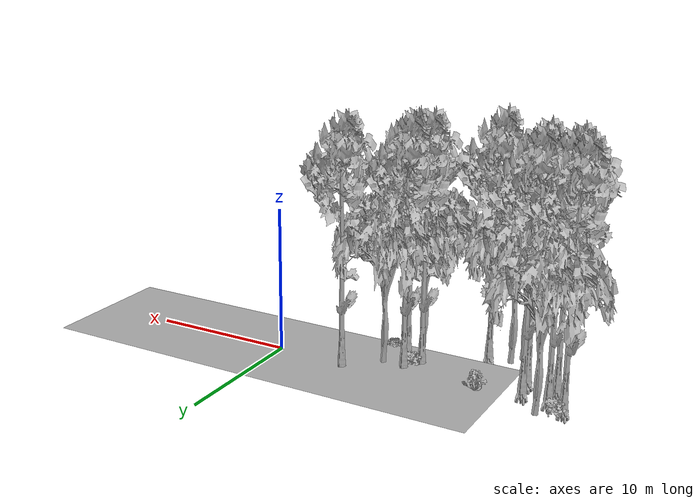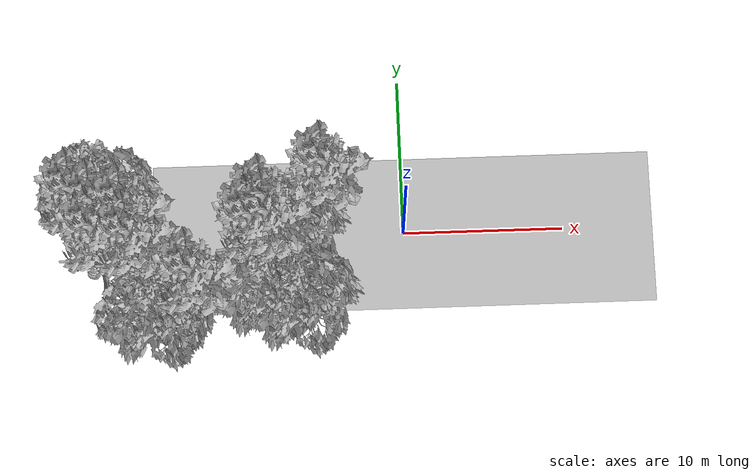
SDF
<sdf version="1.7">
 <world name="default">
  <model name="ground_plane">
   <static>1</static>
   <link name="link">
    <collision name="collision">
     <geometry><plane><normal>0 0 1</normal><size>100 100</size></plane></geometry>
     <surface><contact><ode><min_depth>0.01</min_depth><max_vel>0</max_vel></ode></contact></surface>
    </collision>
    <visual name="grass">
     <cast_shadows>0</cast_shadows>
     <geometry>
      <mesh>
       <scale>0.5814285714285714 0.18142857142857144 0.1</scale>
       <uri>file://grass_plane/meshes/grass_plane.dae</uri>
      </mesh>
     </geometry>
    </visual>
   </link>
  </model>
  <model name="Tree 13">
   <static>1</static>
   <pose>-12.948915257245588 -5.804248007386818 0 1.57079 -0 0</pose>
   <link name="link">
    <collision name="collision">
     <geometry><mesh><scale>3.5 5 3.5</scale><uri>model://tree_9/meshes/tree_9.obj</uri></mesh></geometry>
    </collision>
    <visual name="visual">
     <geometry><mesh><scale>3.5 5 3.5</scale><uri>model://tree_9/meshes/tree_9.obj</uri></mesh></geometry>
    </visual>
   </link>
  </model>
  <model name="Tree 15">
   <static>1</static>
   <pose>-16.50872034653105 -3.425788888725897 0 1.57079 -0 0</pose>
   <link name="link">
    <collision name="collision">
     <geometry><mesh><scale>3.5 5 3.5</scale><uri>model://tree_9/meshes/tree_9.obj</uri></mesh></geometry>
    </collision>
    <visual name="visual">
     <geometry><mesh><scale>3.5 5 3.5</scale><uri>model://tree_9/meshes/tree_9.obj</uri></mesh></geometry>
    </visual>
   </link>
  </model>
  <model name="Tree 29">
   <static>1</static>
   <pose>-6.554301219877615 -6.090810512705307 0 1.57079 -0 0</pose>
   <link name="link">
    <collision name="collision">
     <geometry><mesh><scale>3.5 5 3.5</scale><uri>model://tree_2/meshes/tree_2.obj</uri></mesh></geometry>
    </collision>
    <visual name="visual">
     <geometry><mesh><scale>3.5 5 3.5</scale><uri>model://tree_2/meshes/tree_2.obj</uri></mesh></geometry>
    </visual>
   </link>
  </model>
  <model name="Tree 48">
   <static>1</static>
   <pose>-18.562481043186203 -1.4680168973663381 0 1.57079 -0 0</pose>
   <link name="link">
    <collision name="collision">
     <geometry><mesh><scale>3.5 5 3.5</scale><uri>model://tree_9/meshes/tree_9.obj</uri></mesh></geometry>
    </collision>
    <visual name="visual">
     <geometry><mesh><scale>3.5 5 3.5</scale><uri>model://tree_9/meshes/tree_9.obj</uri></mesh></geometry>
    </visual>
   </link>
  </model>
  <model name="Tree 93">
   <static>1</static>
   <pose>-14.64779774355054 -5.747082440228766 0 1.57079 -0 0</pose>
   <link name="link">
    <collision name="collision">
     <geometry><mesh><scale>3.5 5 3.5</scale><uri>model://tree_2/meshes/tree_2.obj</uri></mesh></geometry>
    </collision>
    <visual name="visual">
     <geometry><mesh><scale>3.5 5 3.5</scale><uri>model://tree_2/meshes/tree_2.obj</uri></mesh></geometry>
    </visual>
   </link>
  </model>
  <model name="Tree 120">
   <static>1</static>
   <pose>-19.766521433230793 -0.7157411220260261 0 1.57079 -0 0</pose>
   <link name="link">
    <collision name="collision">
     <geometry><mesh><scale>3.5 5 3.5</scale><uri>model://tree_9/meshes/tree_9.obj</uri></mesh></geometry>
    </collision>
    <visual name="visual">
     <geometry><mesh><scale>3.5 5 3.5</scale><uri>model://tree_9/meshes/tree_9.obj</uri></mesh></geometry>
    </visual>
   </link>
  </model>
  <model name="Tree 133">
   <static>1</static>
   <pose>-8.465887214274709 -5.1511072005080685 0 1.57079 -0 0</pose>
   <link name="link">
    <collision name="collision">
     <geometry><mesh><scale>3.5 5 3.5</scale><uri>model://tree_2/meshes/tree_2.obj</uri></mesh></geometry>
    </collision>
    <visual name="visual">
     <geometry><mesh><scale>3.5 5 3.5</scale><uri>model://tree_2/meshes/tree_2.obj</uri></mesh></geometry>
    </visual>
   </link>
  </model>
  <model name="Tree 159">
   <static>1</static>
   <pose>-15.180500420641678 -6.615930069694029 0 1.57079 -0 0</pose>
   <link name="link">
    <collision name="collision">
     <geometry><mesh><scale>3.5 5 3.5</scale><uri>model://tree_2/meshes/tree_2.obj</uri></mesh></geometry>
    </collision>
    <visual name="visual">
     <geometry><mesh><scale>3.5 5 3.5</scale><uri>model://tree_2/meshes/tree_2.obj</uri></mesh></geometry>
    </visual>
   </link>
  </model>
  <model name="Tree 181">
   <static>1</static>
   <pose>-18.587619823363116 -3.08139887709104 0 1.57079 -0 0</pose>
   <link name="link">
    <collision name="collision">
     <geometry><mesh><scale>3.5 5 3.5</scale><uri>model://tree_9/meshes/tree_9.obj</uri></mesh></geometry>
    </collision>
    <visual name="visual">
     <geometry><mesh><scale>3.5 5 3.5</scale><uri>model://tree_9/meshes/tree_9.obj</uri></mesh></geometry>
    </visual>
   </link>
  </model>
  <model name="Tree 258">
   <static>1</static>
   <pose>-8.609697771824024 -1.5036963535307954 0 1.57079 -0 0</pose>
   <link name="link">
    <collision name="collision">
     <geometry><mesh><scale>3.5 5 3.5</scale><uri>model://tree_9/meshes/tree_9.obj</uri></mesh></geometry>
    </collision>
    <visual name="visual">
     <geometry><mesh><scale>3.5 5 3.5</scale><uri>model://tree_9/meshes/tree_9.obj</uri></mesh></geometry>
    </visual>
   </link>
  </model>
  <model name="Tree 274">
   <static>1</static>
   <pose>-7.172556890817312 -1.6320914384764205 0 1.57079 -0 0</pose>
   <link name="link">
    <collision name="collision">
     <geometry><mesh><scale>3.5 5 3.5</scale><uri>model://tree_2/meshes/tree_2.obj</uri></mesh></geometry>
    </collision>
    <visual name="visual">
     <geometry><mesh><scale>3.5 5 3.5</scale><uri>model://tree_2/meshes/tree_2.obj</uri></mesh></geometry>
    </visual>
   </link>
  </model>
  <model name="Tree 314">
   <static>1</static>
   <pose>-18.537428814671035 0.5806405170192033 0 1.57079 -0 0</pose>
   <link name="link">
    <collision name="collision">
     <geometry><mesh><scale>3.5 5 3.5</scale><uri>model://tree_2/meshes/tree_2.obj</uri></mesh></geometry>
    </collision>
    <visual name="visual">
     <geometry><mesh><scale>3.5 5 3.5</scale><uri>model://tree_2/meshes/tree_2.obj</uri></mesh></geometry>
    </visual>
   </link>
  </model>
  <model name="Tree 337">
   <static>1</static>
   <pose>-8.462522097383804 -2.493207870967325 0 1.57079 -0 0</pose>
   <link name="link">
    <collision name="collision">
     <geometry><mesh><scale>3.5 5 3.5</scale><uri>model://tree_9/meshes/tree_9.obj</uri></mesh></geometry>
    </collision>
    <visual name="visual">
     <geometry><mesh><scale>3.5 5 3.5</scale><uri>model://tree_9/meshes/tree_9.obj</uri></mesh></geometry>
    </visual>
   </link>
  </model>
  <model name="Tree 363">
   <static>1</static>
   <pose>-4.968449363082257 0.4005618764663694 0 1.57079 -0 0</pose>
   <link name="link">
    <collision name="collision">
     <geometry><mesh><scale>3.5 5 3.5</scale><uri>model://tree_9/meshes/tree_9.obj</uri></mesh></geometry>
    </collision>
    <visual name="visual">
     <geometry><mesh><scale>3.5 5 3.5</scale><uri>model://tree_9/meshes/tree_9.obj</uri></mesh></geometry>
    </visual>
   </link>
  </model>
  <model name="Tree 376">
   <static>1</static>
   <pose>-16.755128210685452 -1.757016428130246 0 1.57079 -0 0</pose>
   <link name="link">
    <collision name="collision">
     <geometry><mesh><scale>3.5 5 3.5</scale><uri>model://tree_9/meshes/tree_9.obj</uri></mesh></geometry>
    </collision>
    <visual name="visual">
     <geometry><mesh><scale>3.5 5 3.5</scale><uri>model://tree_9/meshes/tree_9.obj</uri></mesh></geometry>
    </visual>
   </link>
  </model>
  <model name="Tree 404">
   <static>1</static>
   <pose>-9.379091189586426 -2.697220303566578 0 1.57079 -0 0</pose>
   <link name="link">
    <collision name="collision">
     <geometry><mesh><scale>3.5 5 3.5</scale><uri>model://tree_9/meshes/tree_9.obj</uri></mesh></geometry>
    </collision>
    <visual name="visual">
     <geometry><mesh><scale>3.5 5 3.5</scale><uri>model://tree_9/meshes/tree_9.obj</uri></mesh></geometry>
    </visual>
   </link>
  </model>
  <model name="Bush 99">
   <static>1</static>
   <pose>-19.26365175655082 -0.3282097815001457 0 1.57079 -0 0</pose>
   <link name="link">
    <collision name="collision">
     <geometry><mesh><scale>2 2 2</scale><uri>model://bush_3/meshes/bush_3.obj</uri></mesh></geometry>
     <surface><contact><collide_without_contact>false</collide_without_contact></contact></surface>
    </collision>
    <visual name="visual">
     <geometry><mesh><scale>2 2 2</scale><uri>model://bush_3/meshes/bush_3.obj</uri></mesh></geometry>
    </visual>
   </link>
  </model>
  <model name="Bush 110">
   <static>1</static>
   <pose>-14.077700488302092 -0.6504351802071753 0 1.57079 -0 0</pose>
   <link name="link">
    <collision name="collision">
     <geometry><mesh><scale>2 2 2</scale><uri>model://bush_4/meshes/bush_4.obj</uri></mesh></geometry>
     <surface><contact><collide_without_contact>false</collide_without_contact></contact></surface>
    </collision>
    <visual name="visual">
     <geometry><mesh><scale>2 2 2</scale><uri>model://bush_4/meshes/bush_4.obj</uri></mesh></geometry>
    </visual>
   </link>
  </model>
  <model name="Bush 139">
   <static>1</static>
   <pose>-6.523193450538109 -4.683135425494044 0 1.57079 -0 0</pose>
   <link name="link">
    <collision name="collision">
     <geometry><mesh><scale>2 2 2</scale><uri>model://bush_2/meshes/bush_2.obj</uri></mesh></geometry>
     <surface><contact><collide_without_contact>false</collide_without_contact></contact></surface>
    </collision>
    <visual name="visual">
     <geometry><mesh><scale>2 2 2</scale><uri>model://bush_2/meshes/bush_2.obj</uri></mesh></geometry>
    </visual>
   </link>
  </model>
  <model name="Bush 200">
   <static>1</static>
   <pose>-8.914756327647993 -2.158992184523129 0 1.57079 -0 0</pose>
   <link name="link">
    <collision name="collision">
     <geometry><mesh><scale>2 2 2</scale><uri>model://bush_3/meshes/bush_3.obj</uri></mesh></geometry>
     <surface><contact><collide_without_contact>false</collide_without_contact></contact></surface>
    </collision>
    <visual name="visual">
     <geometry><mesh><scale>2 2 2</scale><uri>model://bush_3/meshes/bush_3.obj</uri></mesh></geometry>
    </visual>
   </link>
  </model>
  <model name="Bush 298">
   <static>1</static>
   <pose>-6.476585148854298 -4.5812581511844215 0 1.57079 -0 0</pose>
   <link name="link">
    <collision name="collision">
     <geometry><mesh><scale>2 2 2</scale><uri>model://bush_2/meshes/bush_2.obj</uri></mesh></geometry>
     <surface><contact><collide_without_contact>false</collide_without_contact></contact></surface>
    </collision>
    <visual name="visual">
     <geometry><mesh><scale>2 2 2</scale><uri>model://bush_2/meshes/bush_2.obj</uri></mesh></geometry>
    </visual>
   </link>
  </model>
  <model name="Bush 322">
   <static>1</static>
   <pose>-19.383330765058517 -0.4191214200062099 0 1.57079 -0 0</pose>
   <link name="link">
    <collision name="collision">
     <geometry><mesh><scale>2 2 2</scale><uri>model://bush_2/meshes/bush_2.obj</uri></mesh></geometry>
     <surface><contact><collide_without_contact>false</collide_without_contact></contact></surface>
    </collision>
    <visual name="visual">
     <geometry><mesh><scale>2 2 2</scale><uri>model://bush_2/meshes/bush_2.obj</uri></mesh></geometry>
    </visual>
   </link>
  </model>
 </world>
</sdf>
